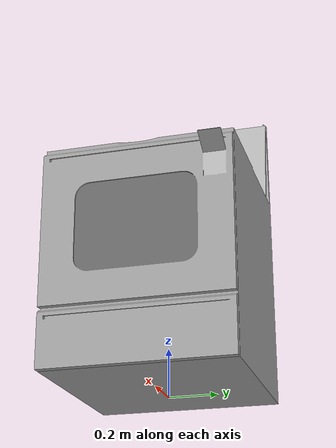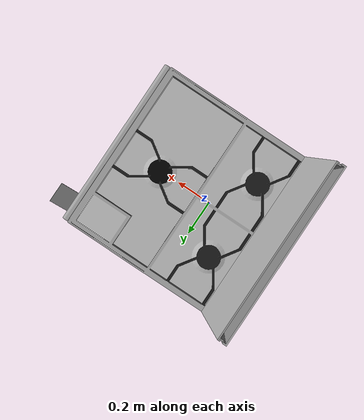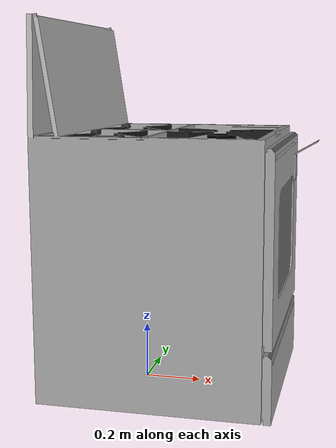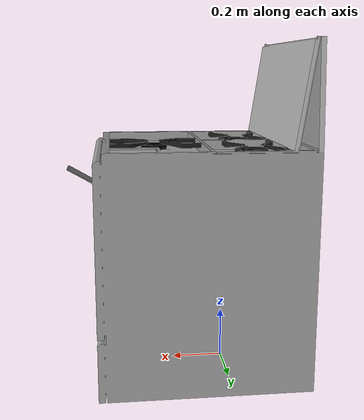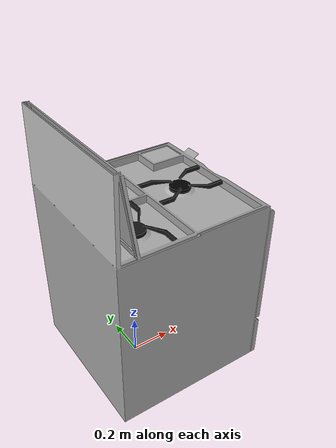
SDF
<?xml version="1.0"?>

<sdf version="1.5">
  <model name="burner_stove">
    <link name="link">
      <pose>0 0 0 0 0 0</pose>
      <collision name="collision">
        <geometry>
          <mesh>
            <uri>model://burner_stove/meshes/model.dae</uri>
            <scale>1.0 1.0 1.0</scale>
          </mesh>
        </geometry>
      </collision>
      <visual name="visual">
        <geometry>
          <mesh>
            <uri>model://burner_stove/meshes/model.dae</uri>
            <scale>1.0 1.0 1.0</scale>
          </mesh>
        </geometry>
      </visual>
    </link>
  </model>
</sdf>
